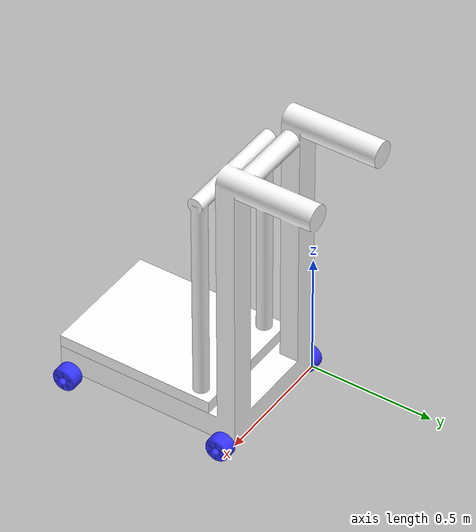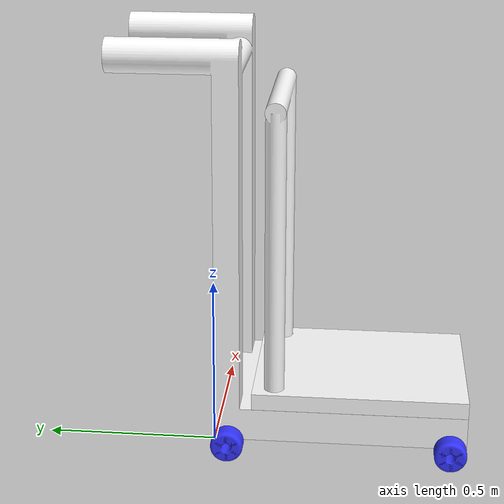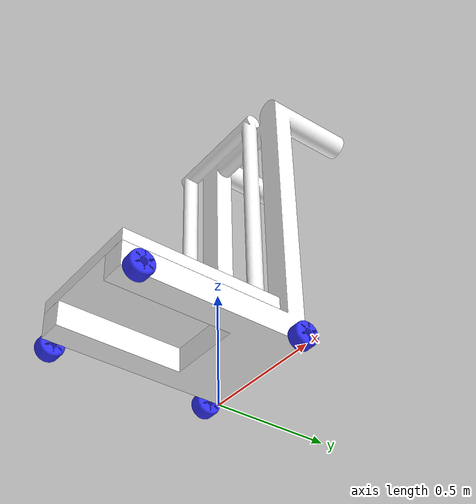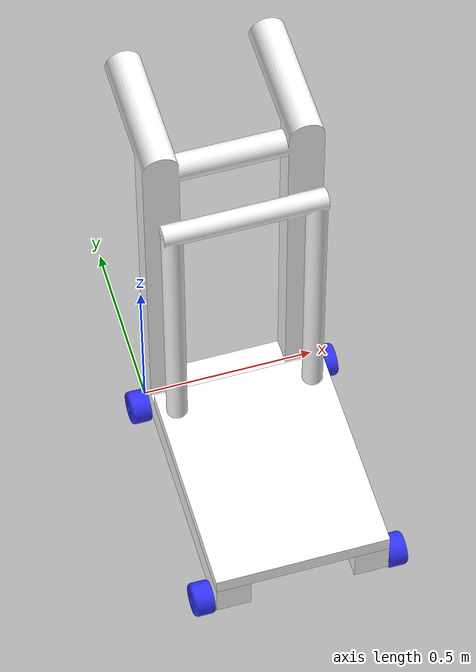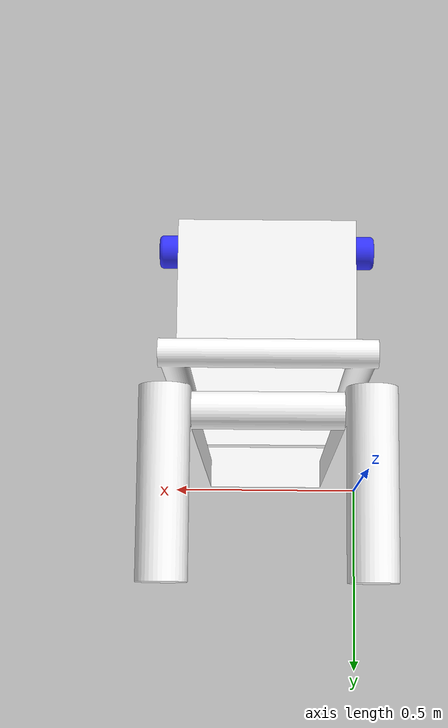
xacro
<?xml version="1.0"?>
<robot xmlns:xacro="http://www.ros.org/wiki/xacro"  name="robot">

    <xacro:include filename="robot_core.xacro" />
    <xacro:include filename="gazebo_control.xacro" />
    <xacro:include filename="arm.xacro" />

    <ros2_control name="gripper_robot_gazebo_system" type="system">
        <hardware>
            <plugin>gazebo_ros2_control/GazeboSystem</plugin>
        </hardware>
        <xacro:arm/>
    </ros2_control>
    <xacro:robot_controller/>

</robot>

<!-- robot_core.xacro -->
<robot xmlns:xacro="http://www.ros.org/wiki/xacro" >

    <xacro:include filename="inertial_macros.xacro" />

    <material name="white">
        <color rgba="1 1 1 1" />
    </material>

    <material name="orange">
        <color rgba="1 0.3 0.1 1"/>
    </material>

    <material name="blue">
        <color rgba="0.2 0.2 1 1"/>
    </material>

    <material name="black">
        <color rgba="0 0 0 1"/>
    </material>

    <material name="red">
        <color rgba="1 0 0 1"/>
    </material>

    <!-- BASE LINK -->

    <link name="base_link">

    </link>

    <!-- BASE_FOOTPRINT LINK -->

    <joint name="base_footprint_joint" type="fixed">
        <parent link="base_link"/>
        <child link="base_footprint"/>
        <origin xyz="0 0 0" rpy="0 0 0"/>
    </joint>

    <link name="base_footprint">
    </link>

    <joint name="chassis_joint" type="fixed">
        <parent link="base_link"/>
        <child link="chassis"/>
        <origin xyz="0 0 0"/>
    </joint>

    <link name="chassis">
        <visual>
            <origin xyz="0 0 0" rpy="0 0 0"/>
            <geometry>
                <mesh filename="file:///home/tanyong/carty_ws/src/articubot_one/description/Model/model1.dae" scale="1 1 1"/>
            </geometry>
            <material name="white"/>
        </visual>
        <collision>
            <geometry>
                <mesh filename="file:///home/tanyong/carty_ws/src/articubot_one/description/Model/model1.dae" scale="1 1 1"/>
            </geometry>
            <material name="white"/>
        </collision>
        <xacro:inertial_box mass="4" x="0.5" y="0.5" z="0.01">
            <origin xyz="0.253 -0.406 0.05" rpy="0 0 0"/>
        </xacro:inertial_box>
    </link>

    <!-- LEFT WHEEL -->

    <joint name="left_wheel_joint" type="continuous">
        <parent link="base_link"/>
        <child link="left_wheel"/>
        <origin xyz="-0.03 -0.04 0" rpy="-${pi/2} 0 0"/>
        <axis xyz="1 0 0"/>
    </joint>

    <link name="left_wheel">
        <visual>
            <geometry>
                <mesh filename="file:///home/tanyong/carty_ws/src/articubot_one/description/Model/wheel4.dae" scale="1 1 1"/>
            </geometry>
            <material name="blue"/>
        </visual>
        <collision>
            <geometry>
                <mesh filename="file:///home/tanyong/carty_ws/src/articubot_one/description/Model/wheel4.dae" scale="1 1 1"/>
            </geometry>
            <material name="blue"/>
        </collision>
        <xacro:inertial_cylinder mass="0.1" length="0.05" radius="0.05">
            <origin xyz="0 0 0" rpy="0 0 0"/>
        </xacro:inertial_cylinder>
    </link>

    <!-- LEFT WHEEL1 -->

    <joint name="left_wheel1_joint" type="continuous">
        <parent link="base_link"/>
        <child link="left_wheel1"/>
        <origin xyz="0.53 -0.04 0" rpy="-${pi/2} 0 0"/>
        <axis xyz="1 0 0"/>
    </joint>

    <link name="left_wheel1">
        <visual>
            <geometry>
                <mesh filename="file:///home/tanyong/carty_ws/src/articubot_one/description/Model/wheel4.dae" scale="1 1 1"/>
            </geometry>
            <material name="blue"/>
        </visual>
        <collision>
            <geometry>
                <mesh filename="file:///home/tanyong/carty_ws/src/articubot_one/description/Model/wheel4.dae" scale="1 1 1"/>
            </geometry>
            <material name="blue"/>
        </collision>
        <xacro:inertial_cylinder mass="0.1" length="0.05" radius="0.05">
            <origin xyz="0 0 0" rpy="0 0 0"/>
        </xacro:inertial_cylinder>
    </link>

    <!-- RIGHT WHEEL -->

    <joint name="right_wheel_joint" type="continuous">
        <parent link="base_link"/>
        <child link="right_wheel"/>
        <origin xyz="-0.03 -0.7 0" rpy="-${pi/2} 0 0"/>
        <axis xyz="1 0 0"/>
    </joint>

    <link name="right_wheel">
        <visual>
            <geometry>
                <mesh filename="file:///home/tanyong/carty_ws/src/articubot_one/description/Model/wheel4.dae" scale="1 1 1"/>
            </geometry>
            <material name="blue"/>
        </visual>
        <collision>
            <geometry>
                <mesh filename="file:///home/tanyong/carty_ws/src/articubot_one/description/Model/wheel4.dae" scale="1 1 1"/>
            </geometry>
            <material name="blue"/>
        </collision>
        <xacro:inertial_cylinder mass="0.1" length="0.05" radius="0.05">
            <origin xyz="0 0 0" rpy="0 0 0"/>
        </xacro:inertial_cylinder>
    </link>

        <!-- RIGHT WHEEL1 -->

    <joint name="right_wheel1_joint" type="continuous">
        <parent link="base_link"/>
        <child link="right_wheel1"/>
        <origin xyz="0.53 -0.7 0" rpy="-${pi/2} 0 0"/>
        <axis xyz="1 0 0"/>
    </joint>

    <link name="right_wheel1">
        <visual>
            <geometry>
                <mesh filename="file:///home/tanyong/carty_ws/src/articubot_one/description/Model/wheel4.dae" scale="1 1 1"/>
            </geometry>
            <material name="blue"/>
        </visual>
        <collision>
            <geometry>
                <mesh filename="file:///home/tanyong/carty_ws/src/articubot_one/description/Model/wheel4.dae" scale="1 1 1"/>
            </geometry>
            <material name="blue"/>
        </collision>
        <xacro:inertial_cylinder mass="0.1" length="0.05" radius="0.05">
            <origin xyz="0 0 0" rpy="0 0 0"/>
        </xacro:inertial_cylinder>
    </link>

    <joint name="plate_joint" type="prismatic">
        <parent link="base_link"/>
        <child link="plate"/>
        <origin xyz="0.253 -0.406 0.1502"/>
        <axis xyz="0 0 1"/>
        <limit lower="0.0" upper="0.7" effort="-1" velocity="-1"/>

    </joint>

    <link name="plate">
        <visual>
            <origin xyz="0 0 0" rpy="0 0 0"/>
            <geometry>
                <mesh filename="file:///home/tanyong/carty_ws/src/articubot_one/description/Model/plate.dae" scale="1 1 1"/>
            </geometry>
            <material name="white"/>
        </visual>
        <collision>
            <geometry>
                <mesh filename="file:///home/tanyong/carty_ws/src/articubot_one/description/Model/plate.dae" scale="1 1 1"/>
            </geometry>
            <material name="white"/>
        </collision>
        <xacro:inertial_box mass="0.1" x="0.5" y="0.5" z="0.1">
            <origin xyz="0 0 0" rpy="0 0 0"/>
        </xacro:inertial_box>
    </link>

</robot>
